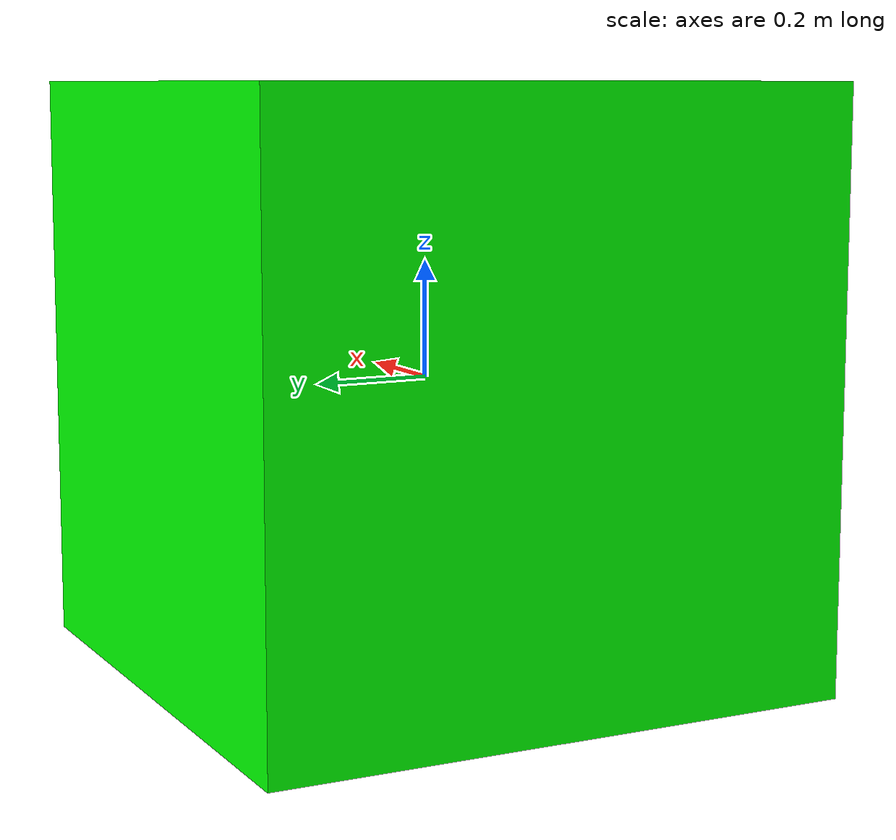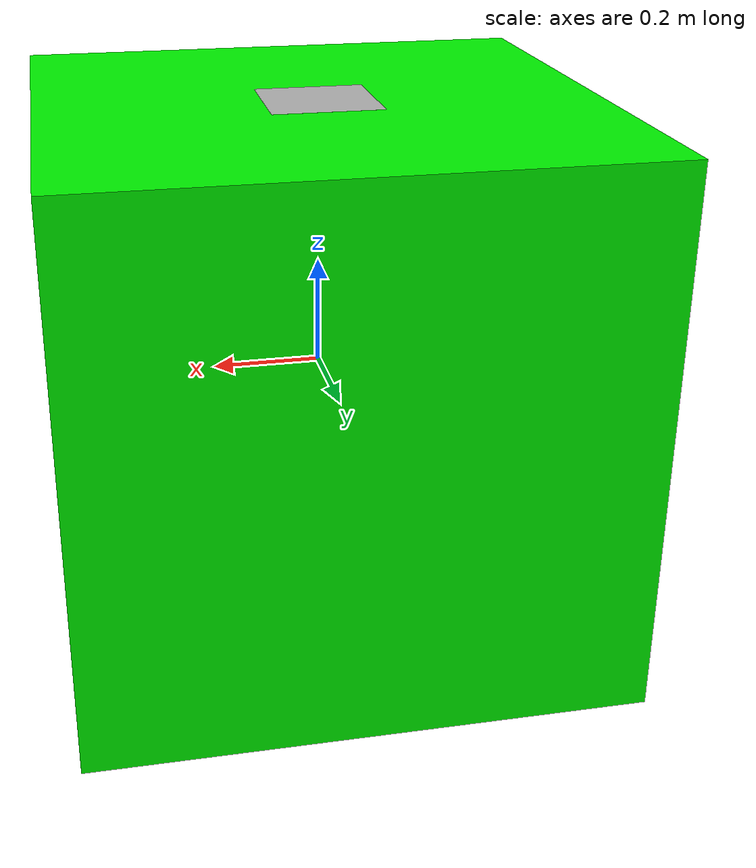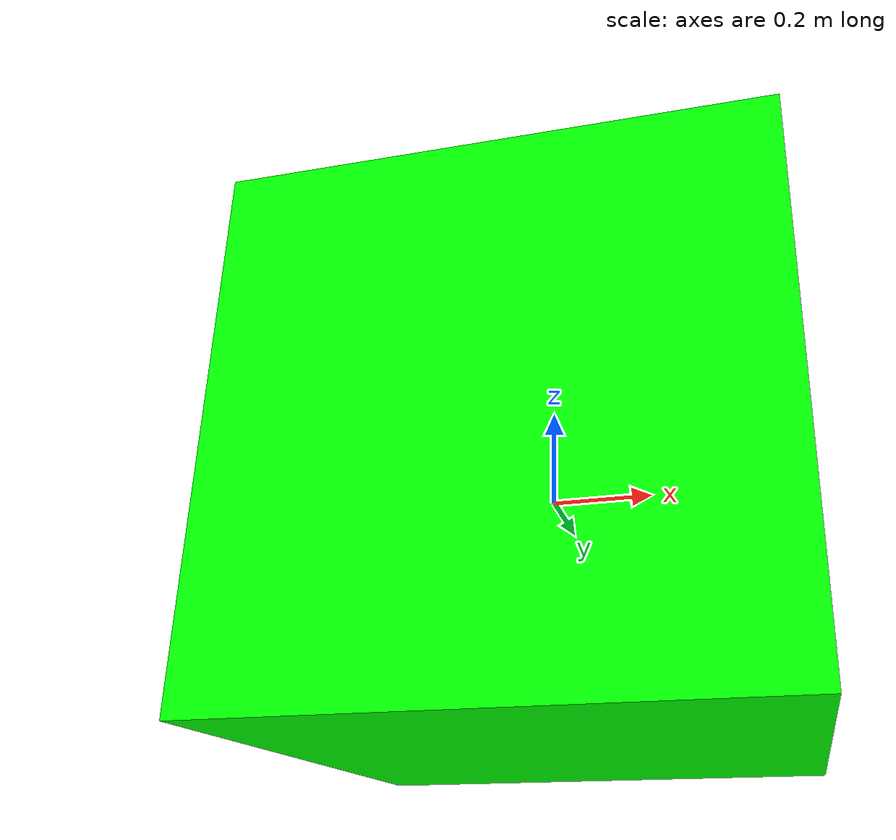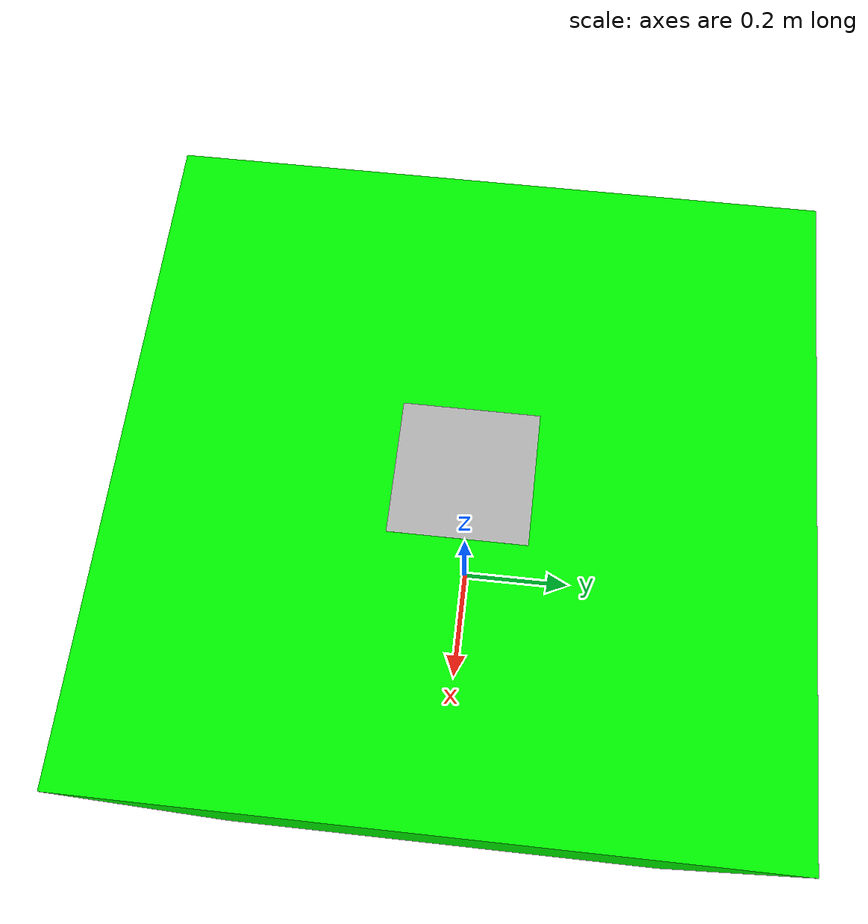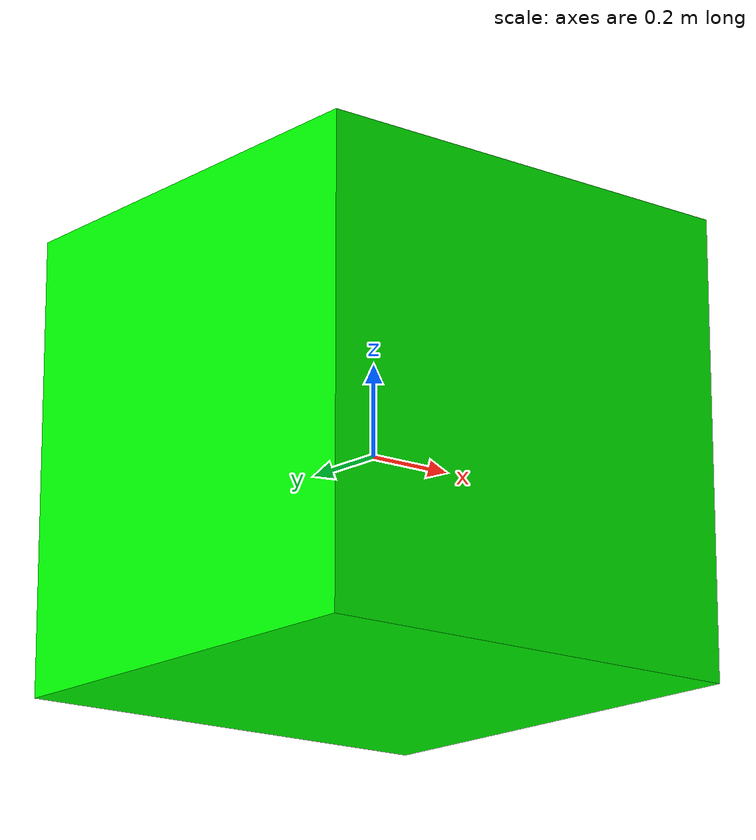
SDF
<?xml version="1.0" ?>
<sdf version="1.9">

    <model name="big_block_green">
      <static>true</static>
      <link name="link">
        <pose>0 0 0 0 0 0</pose>
        <collision name="collision">
          <geometry>
            <box>
              <size>1.0 1.0 1.0</size>
            </box>
          </geometry>
        </collision>
        <visual name="visual">
          <geometry>
            <box>
              <size>1.0 1.0 1.0</size>
            </box>
          </geometry>
          <material>
            <ambient>0 1 0 1</ambient>
            <diffuse>0 1 0 1</diffuse>
            <specular>0.1 0.1 0.1 1</specular>
            <emissive>0 0 0 1</emissive>
          </material>
        </visual>

        <!-- AprilTag decal on top face -->
        <visual name="apriltag_decal">
          <pose>0 0 0.501 0 0 0</pose>
          <geometry>
            <mesh>
              <uri>model://Apriltag36_11_00000/meshes/tag36_11_00000.dae</uri>
              <scale>2 2 1</scale>
            </mesh>
          </geometry>
        </visual>
      </link>
    </model>
</sdf>
